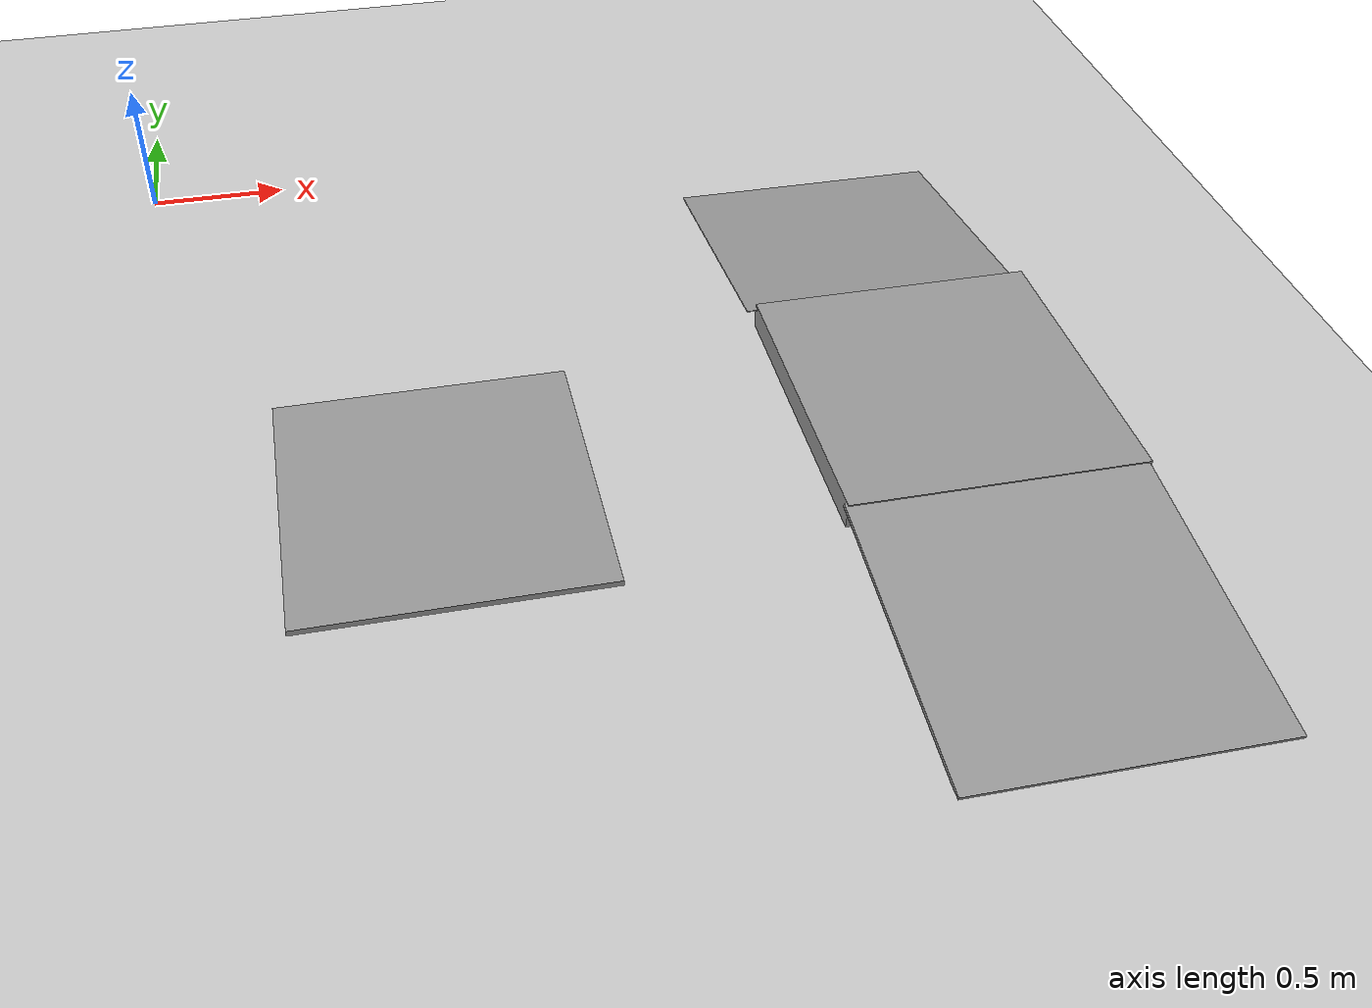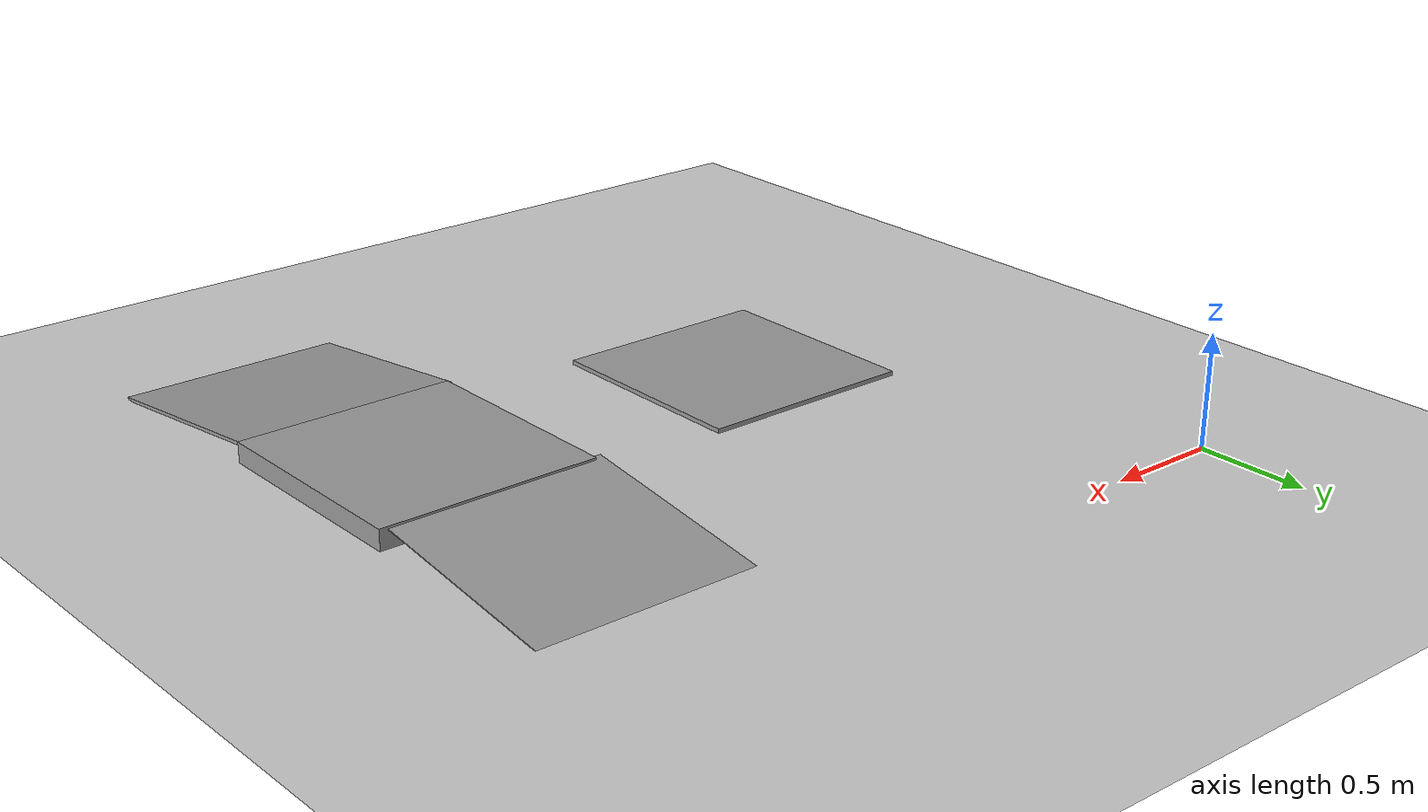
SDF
<sdf version="1.6">
 <world name="default">
  <light name="sun" type="directional">
   <pose>0 0 10 0 -0 0</pose>
   <diffuse>0.8 0.8 0.8 1</diffuse>
   <specular>0.2 0.2 0.2 1</specular>
   <attenuation>
    <range>1000</range>
    <constant>0.9</constant>
    <linear>0.01</linear>
    <quadratic>0.001</quadratic>
   </attenuation>
   <direction>-0.5 0.1 -0.9</direction>
  </light>
  <model name="ground_plane">
   <static>1</static>
   <link name="link">
    <collision name="collision">
     <geometry><plane><normal>0 0 1</normal><size>100 100</size></plane></geometry>
     <surface><friction><ode><mu>100</mu><mu2>50</mu2></ode></friction></surface>
    </collision>
    <visual name="visual">
     <cast_shadows>0</cast_shadows>
     <geometry><plane><normal>0 0 1</normal><size>100 100</size></plane></geometry>
     <material>
      <script><uri>file://media/materials/scripts/gazebo.material</uri><name>Gazebo/Grey</name></script>
     </material>
    </visual>
   </link>
  </model>
  <gravity>0 0 -9.8</gravity>
  <magnetic_field>6e-06 2.3e-05 -4.2e-05</magnetic_field>
  <atmosphere type="adiabatic"/>
  <physics name="default_physics" default="0" type="ode">
   <max_step_size>0.001</max_step_size>
   <real_time_factor>1</real_time_factor>
   <real_time_update_rate>1000</real_time_update_rate>
  </physics>
  <scene><ambient>0.4 0.4 0.4 1</ambient><background>0.7 0.7 0.7 1</background><shadows>1</shadows></scene>
  <spherical_coordinates>
   <surface_model>EARTH_WGS84</surface_model>
   <latitude_deg>0</latitude_deg>
   <longitude_deg>0</longitude_deg>
   <elevation>0</elevation>
   <heading_deg>0</heading_deg>
  </spherical_coordinates>
  <model name="unit_box">
   <static>1</static>
   <pose>0.913675 -1.87857 0.01 0 -0 0</pose>
   <link name="link">
    <inertial>
     <mass>1</mass>
     <inertia>
      <ixx>0.166667</ixx>
      <ixy>0</ixy>
      <ixz>0</ixz>
      <iyy>0.166667</iyy>
      <iyz>0</iyz>
      <izz>0.166667</izz>
     </inertia>
    </inertial>
    <collision name="collision"><geometry><box><size>1 1 0.02</size></box></geometry></collision>
    <visual name="visual">
     <geometry><box><size>1 1 0.02</size></box></geometry>
     <material>
      <script><name>Gazebo/Grey</name><uri>file://media/materials/scripts/gazebo.material</uri></script>
     </material>
    </visual>
   </link>
  </model>
  <audio><device>default</device></audio>
  <model name="unit_box_0_clone">
   <static>1</static>
   <pose>2.58484 -0.810489 0.05403 -0.134694 -1.3e-05 3.1e-05</pose>
   <link name="link">
    <inertial>
     <mass>1</mass>
     <inertia>
      <ixx>0.166667</ixx>
      <ixy>0</ixy>
      <ixz>0</ixz>
      <iyy>0.166667</iyy>
      <iyz>0</iyz>
      <izz>0.166667</izz>
     </inertia>
    </inertial>
    <collision name="collision"><geometry><box><size>1 1 0.00302708</size></box></geometry></collision>
    <visual name="visual">
     <geometry><box><size>1 1 0.00302708</size></box></geometry>
     <material>
      <script><name>Gazebo/Grey</name><uri>file://media/materials/scripts/gazebo.material</uri></script>
     </material>
    </visual>
   </link>
  </model>
  <model name="unit_box_0_clone_0">
   <static>1</static>
   <pose>2.6156 -2.79121 0.058444 0.121368 2e-06 2.4e-05</pose>
   <link name="link">
    <inertial>
     <mass>1</mass>
     <inertia>
      <ixx>0.166667</ixx>
      <ixy>0</ixy>
      <ixz>0</ixz>
      <iyy>0.166667</iyy>
      <iyz>0</iyz>
      <izz>0.166667</izz>
     </inertia>
    </inertial>
    <collision name="collision"><geometry><box><size>1 1 0.015935</size></box></geometry></collision>
    <visual name="visual">
     <geometry><box><size>1 1 0.015935</size></box></geometry>
     <material>
      <script><name>Gazebo/Grey</name><uri>file://media/materials/scripts/gazebo.material</uri></script>
     </material>
    </visual>
   </link>
  </model>
  <model name="unit_box_0">
   <static>1</static>
   <pose>2.62444 -1.79527 0.083257 0 -0 0</pose>
   <link name="link">
    <inertial>
     <mass>1</mass>
     <inertia>
      <ixx>0.166667</ixx>
      <ixy>0</ixy>
      <ixz>0</ixz>
      <iyy>0.166667</iyy>
      <iyz>0</iyz>
      <izz>0.166667</izz>
     </inertia>
    </inertial>
    <collision name="collision"><geometry><box><size>1 1.03197 0.092103</size></box></geometry></collision>
    <visual name="visual">
     <geometry><box><size>1 1.03197 0.092103</size></box></geometry>
     <material>
      <script><name>Gazebo/Grey</name><uri>file://media/materials/scripts/gazebo.material</uri></script>
     </material>
    </visual>
   </link>
  </model>
 </world>
</sdf>
